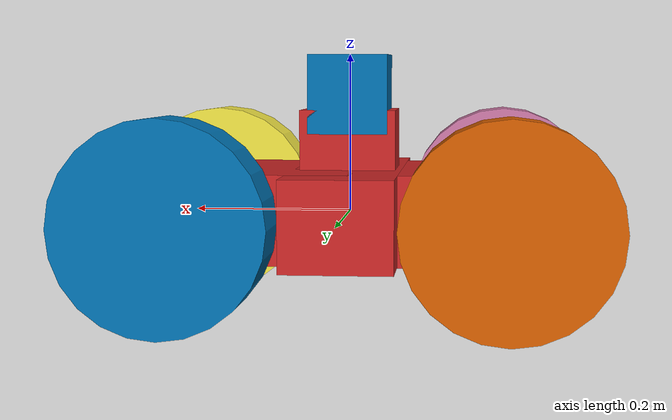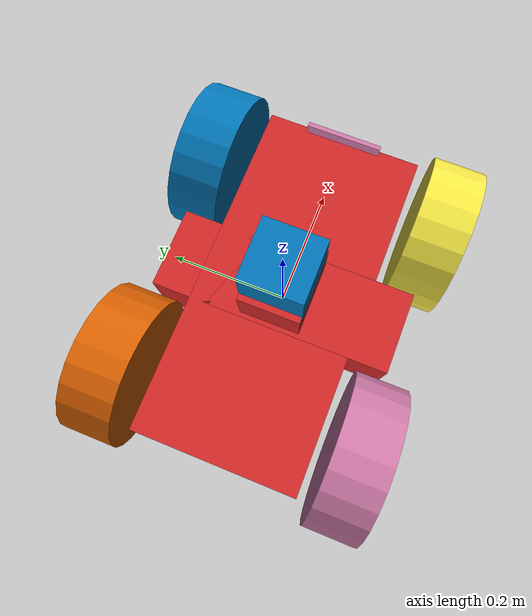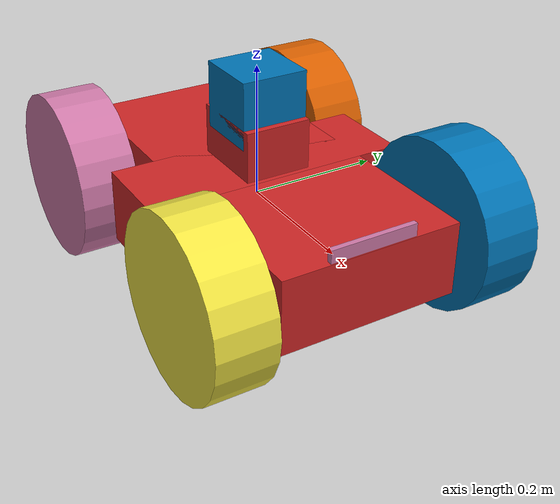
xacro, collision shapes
<?xml version='1.0'?>

<robot name="robot" xmlns:xacro="http://www.ros.org/wiki/xacro">
<xacro:include filename="$(find gazebo_simulation)/urdf/robot.gazebo" />
<xacro:include filename="$(find gazebo_simulation)/urdf/realsense-RS200.macro.xacro"/>
<xacro:include filename="$(find gazebo_simulation)/urdf/omni_wheel.urdf.xacro" />

  <gazebo reference="chassis">
    <material>Gazebo/RedBright</material>
  </gazebo>

  <gazebo reference="chassis2">
    <material>Gazebo/RedBright</material>
  </gazebo>

  <gazebo reference="robot_lidar_platform">
    <material>Gazebo/RedBright</material>
  </gazebo>

  <!-- ROBOT description -->
  <link name="robot_footprint"></link>

  <!--
    KUKA youBot dimentions
    https://www.expo21xx.com/industrial-robots/20317_st3_mobile-robot-research/default.htm
  -->

  <link name='chassis'>
    <pose>0 0 0.1 0 0 0</pose>

    <inertial>
      <mass value="15.0"/>
      <origin xyz="0.0 0 0" rpy=" 0 0 0"/>
      <inertia
          ixx="0.1" ixy="0" ixz="0"
          iyy="0.1" iyz="0"
          izz="0.1"
      />
    </inertial>

    <collision name='collision'>
      <origin xyz="0 0 0" rpy=" 0 0 0"/>
      <geometry>
        <box size=".580 .270 .110"/>
      </geometry>
    </collision>

    <visual name='chassis_visual'>
      <origin xyz="0 0 0" rpy=" 0 0 0"/>
      <geometry>
        <box size=".580 .270 .110"/>
      </geometry>
    </visual>
  </link>

  <joint name="robot_footprint_joint" type="fixed">
    <origin xyz="0 0 0" rpy="0 0 0" />
    <parent link="chassis" />
    <child link="robot_footprint"/>
  </joint>

  <link name='chassis2'>
    <inertial>
      <mass value="1.0"/>
      <origin xyz="0.0 0 0" rpy=" 0 0 0"/>
      <inertia
          ixx="0.1" ixy="0" ixz="0"
          iyy="0.1" iyz="0"
          izz="0.1"
      />
    </inertial>

    <collision name='collision2'>
      <origin xyz="0 0 0" rpy=" 0 0 0"/>
      <geometry>
        <box size=".135 .400 .110"/>
      </geometry>
    </collision>

    <visual name='chassis2_visual'>
      <origin xyz="0 0 0" rpy=" 0 0 0"/>
      <geometry>
        <box size=".135 .400 .110"/>
      </geometry>
    </visual>
  </link>

  <joint name="robot_footprint_joint2" type="fixed">
    <origin xyz="0 0 0" rpy="0 0 0" />
    <parent link="chassis"/>
    <child link="chassis2" />
  </joint>

  <joint name="robot_lidar_platform_joint" type="fixed">
    <origin xyz="0.0 0.0 0.08" rpy="0 0 0" />
    <parent link="chassis"/>
    <child link="robot_lidar_platform" />
  </joint>

  <link name='robot_lidar_platform'>
    <inertial>
      <mass value="1.0"/>
      <origin xyz="0.0 0 0" rpy=" 0 0 0"/>
      <inertia
          ixx="0.1" ixy="0" ixz="0"
          iyy="0.1" iyz="0"
          izz="0.1"
      />
    </inertial>

    <collision name='collision2'>
      <origin xyz="0 0 0" rpy=" 0 0 0"/>
      <geometry>
        <box size=".12 .10 .10"/>
      </geometry>
    </collision>

    <visual>
      <origin xyz="0.0 0 0" rpy=" 0 0 0"/>
      <geometry>
        <box size=".12 .10 .10"/>
      </geometry>
    </visual>
  </link>

  <!--
  Wheel:
    radius: 50mm
    length: 76mm
    mass: 500gr.
  -->

  <!-- LIDAR -->
  <link name="hokuyo">
    <inertial>
      <mass value="1e-5"/>
      <origin xyz="0 0 0" rpy=" 0 0 0"/>
      <inertia
          ixx="1e-6" ixy="0" ixz="0"
          iyy="1e-6" iyz="0"
          izz="1e-6"
      />
    </inertial>

    <collision name='hokuyo_collision'>
      <origin xyz="0 0 0" rpy=" 0 0 0"/>
      <geometry>
        <box size="0.1 0.1 0.1"/>
      </geometry>
    </collision>

    <visual name='hokuyo_visual'>
      <origin xyz="0 0 0" rpy=" 0 0 0"/>
      <geometry>
        <mesh filename="package://gazebo_simulation/meshes/hokuyo.dae"/>
      </geometry>
    </visual>
  </link>

  <joint type="fixed" name="hokuyo_joint">
    <origin xyz="0.0 0.0 0.15" rpy="0 0 0"/>
    <child link="hokuyo"/>
    <parent link="chassis"/>
    <axis xyz="0 1 0" rpy="0 0 0"/>
  </joint>

  <!-- IMU -->
  <link name="imu_link">
    <inertial>
      <mass value="0.001"/>
      <origin rpy="0 0 0" xyz="0 0 0"/>
      <inertia ixx="0.0001" ixy="0" ixz="0" iyy="0.000001" iyz="0" izz="0.0001"/>
    </inertial>
    <visual>
      <origin rpy="0 0 0" xyz="0 0 0"/>
      <geometry>
        <box size="0.001 0.001 0.001"/>
      </geometry>
    </visual>
  </link>

  <gazebo>
    <plugin name="imu_controller" filename="libhector_gazebo_ros_imu.so">
      <robotNamespace>/</robotNamespace>
      <updateRate>50.0</updateRate>
      <bodyName>chassis</bodyName>
      <topicName>imu/data</topicName>
      <accelDrift>0.005 0.005 0.005</accelDrift>
      <accelGaussianNoise>0.005 0.005 0.005</accelGaussianNoise>
      <rateDrift>0.005 0.005 0.005 </rateDrift>
      <rateGaussianNoise>0.005 0.005 0.005 </rateGaussianNoise>
      <headingDrift>0.005</headingDrift>
      <headingGaussianNoise>0.005</headingGaussianNoise>
    </plugin>
  </gazebo>

  <joint name="imu_joint" type="fixed">
    <axis xyz="1 0 0"/>
    <origin xyz="0 0 0.19"/>
    <parent link="chassis"/>
    <child link="imu_link"/>
  </joint>

  <!-- Create camera instance -->
  <xacro:realsense-rs200 prefix="" parent="chassis">
    <origin xyz="0.285 0 .065" rpy="0 0 0" />
  </xacro:realsense-rs200>

  <!-- x,y,z in translation from base_link to the center of the wheel -->
  <xacro:property name="wheel_offset_x" value="0.2" />
  <xacro:property name="wheel_offset_y" value="0.2" />
  <xacro:property name="wheel_offset_z" value="0.0" />

  <!-- Add omni wheels to the robot -->
  <xacro:omni_wheel prefix="front_right" parent="chassis" reflect="false">
    <origin xyz="${wheel_offset_x} -${wheel_offset_y} ${wheel_offset_z}" rpy="0 0 0"/>
  </xacro:omni_wheel>

  <xacro:omni_wheel prefix="front_left" parent="chassis" reflect="true">
    <origin xyz="${wheel_offset_x} ${wheel_offset_y} ${wheel_offset_z}" rpy="0 0 0"/>
  </xacro:omni_wheel>

  <xacro:omni_wheel prefix="back_left" parent="chassis" reflect="true">
    <origin xyz="-${wheel_offset_x} ${wheel_offset_y} ${wheel_offset_z}" rpy="0 0 0"/>
  </xacro:omni_wheel>

  <xacro:omni_wheel prefix="back_right" parent="chassis" reflect="false">
    <origin xyz="-${wheel_offset_x} -${wheel_offset_y} ${wheel_offset_z}" rpy="0 0 0"/>
  </xacro:omni_wheel>

</robot>

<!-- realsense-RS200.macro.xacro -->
<robot xmlns:xacro="http://ros.org/wiki/xacro">
<xacro:macro name="realsense-rs200" params="prefix parent *origin">

    <!-- Camera link -->
    <link name="${prefix}rs200_camera">
        <visual>
            <origin rpy="0 0 0" xyz="0 0 0"/>
            <geometry>
                <mesh filename="package://gazebo_simulation/meshes/realsense.dae"/>
            </geometry>
        </visual>
        <collision>
            <geometry>
                <box size="0.0078 0.130 0.0192"/>
            </geometry>
        </collision>
        <inertial>
            <mass value="0.0615752"/>
            <origin rpy="0 0 0" xyz="0 0 0"/>
            <inertia ixx="9.108e-05"
                     ixy="0"
                     ixz="0"
                     iyy="2.51e-06"
                     iyz="0"
                     izz="8.931e-05"
            />
        </inertial>
    </link>

    <!-- Connect camera to parent frame-->
    <joint name="${prefix}realsense_joint" type="fixed">
        <parent link="${parent}"/>
        <child link="${prefix}rs200_camera"/>
        <xacro:insert_block name="origin"/>
    </joint>

    <!-- Virtual links representing the cameras positons and orientations-->
    <link name="${prefix}color" />
    <link name="${prefix}depth" />
    <link name="${prefix}ired1" />
    <link name="${prefix}ired2" />

    <!-- Joints positioning the virtual links with respect to the camera main link-->
    <joint name="${prefix}color_joint" type="fixed">
        <parent link="${prefix}rs200_camera" />
        <child link="${prefix}color" />
        <!-- The default position is change since in Rviz the cloud depth axis is Z not X-->
        <origin xyz="0 -0.046 0.004" rpy="${pi/2} ${pi} ${pi/2}"/>
    </joint>

    <joint name="${prefix}depth_joint" type="fixed">
        <parent link="${prefix}rs200_camera" />
        <child link="${prefix}depth" />
        <origin xyz="0 -0.03 0.004" rpy="0 0 0"/>
    </joint>

    <joint name="${prefix}ired1_joint" type="fixed">
        <parent link="${prefix}rs200_camera" />
        <child link="${prefix}ired1" />
        <origin xyz="0 -0.06 0.004" rpy="0 0 0"/>
    </joint>

    <joint name="${prefix}ired2_joint" type="fixed">
        <parent link="${prefix}rs200_camera" />
        <child link="${prefix}ired2" />
        <origin xyz="0 0.01 0.004" rpy="0 0 0"/>
    </joint>

<!-- GAZEBO DEFINITIONS ***************************************-->

    <!-- Load plugin to the model ("robot" in urdf format)-->
    <gazebo>
        <plugin name="${prefix}r200" filename="librealsense_gazebo_plugin.so">
            <prefix>${prefix}</prefix>
        </plugin>
    </gazebo>

    <!-- Load parameters to model's main link-->
    <gazebo reference="${prefix}rs200_camera">
        <self_collide>0</self_collide>
        <enable_wind>0</enable_wind>
        <kinematic>0</kinematic>
        <gravity>1</gravity>
        <mu2>1</mu2>
        <fdir1>0 0 0</fdir1>
        <kp>1e+13</kp>
        <kd>1</kd>

        <sensor name="${prefix}color" type="camera">
            <pose frame="">0 -0.046 0.004 0 0 0</pose>
            <camera name="${prefix}rs200_camera">
            <horizontal_fov>1.047</horizontal_fov>
            <image>
                <width>640</width>
                <height>480</height>
                <format>RGB_INT8</format>
            </image>
            <clip>
                <near>0.1</near>
                <far>100</far>
            </clip>
            <noise>
                <type>gaussian</type>
                <mean>0.0</mean>
                <stddev>0.007</stddev>
            </noise>
            </camera>
            <always_on>1</always_on>
            <update_rate>60</update_rate>
            <visualize>1</visualize>
        </sensor>
        <sensor name="${prefix}ired1" type="camera">
            <pose frame="">0 -0.06 0.004 0 0 0</pose>
            <camera name="${prefix}rs200_camera">
            <horizontal_fov>1.047</horizontal_fov>
            <image>
                <width>640</width>
                <height>480</height>
                <format>L_INT8</format>
            </image>
            <clip>
                <near>0.1</near>
                <far>100</far>
            </clip>
            <noise>
                <type>gaussian</type>
                <mean>0.0</mean>
                <stddev>0.05</stddev>
            </noise>
            </camera>
            <always_on>1</always_on>
            <update_rate>60</update_rate>
            <visualize>0</visualize>
        </sensor>
        <sensor name="${prefix}ired2" type="camera">
            <pose frame="">0 0.01 0.004 0 0 0</pose>
            <camera name="${prefix}rs200_camera">
            <horizontal_fov>1.047</horizontal_fov>
            <image>
                <width>640</width>
                <height>480</height>
                <format>L_INT8</format>
            </image>
            <clip>
                <near>0.1</near>
                <far>100</far>
            </clip>
            <noise>
                <type>gaussian</type>
                <mean>0.0</mean>
                <stddev>0.05</stddev>
            </noise>
            </camera>
            <always_on>1</always_on>
            <update_rate>60</update_rate>
            <visualize>0</visualize>
        </sensor>
        <sensor name="${prefix}depth" type="depth">
            <pose frame="">0 -0.03 0.004 0 0 0</pose>
            <camera name="${prefix}rs200_camera">
            <horizontal_fov>1.047</horizontal_fov>
            <image>
                    <width>640</width>
                    <height>480</height>
            </image>
            <clip>
                    <near>0.1</near>
                    <far>100</far>
            </clip>
            <noise>
                    <type>gaussian</type>
                    <mean>0.0</mean>
                    <stddev>0.100</stddev>
            </noise>
            </camera>
            <always_on>1</always_on>
            <update_rate>60</update_rate>
            <visualize>0</visualize>
        </sensor>
    </gazebo>

</xacro:macro>
</robot>

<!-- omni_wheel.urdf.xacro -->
<robot name="wheel" xmlns:xacro="http://www.ros.org/wiki/xacro">

  <!-- Constants -->
  <xacro:property name="PI" value="3.1415926535897931" />
  <xacro:property name="wheel_radius" value="0.127" />
  <xacro:property name="wheel_height" value="0.087" />
  <xacro:property name="wheel_mass" value="0.5" /> <!-- in kg-->

  <!-- Simple Macro to calculate inertia -->
  <xacro:macro name="cylinder_inertia" params="m r h">
    <inertia  ixx="${m*(3*r*r+h*h)/12}" ixy = "0" ixz = "0"
              iyy="${m*r*r/2}" iyz = "0"
              izz="${m*(3*r*r+h*h)/12}" />
  </xacro:macro>

  <!-- Set up of the Wheel -->
  <xacro:macro name="omni_wheel" params="prefix parent *origin reflect">

    <link name="${prefix}_wheel_link">
      <visual>
        <origin xyz="0 0 0" rpy="0 0 0" />
        <xacro:if value="${reflect}">
          <geometry>
            <mesh filename="package://gazebo_simulation/meshes/omni_wheel_1.dae" />
          </geometry>
          </xacro:if>
          <xacro:unless value="${reflect}">
            <geometry>
              <mesh filename="package://gazebo_simulation/meshes/omni_wheel_2.dae" />
            </geometry>
		    </xacro:unless>
      </visual>

      <collision>
				<origin xyz="0 0 0" rpy="${PI/2} 0 0" />
        <geometry>
					<cylinder length="${wheel_height}" radius="${wheel_radius}" />
        </geometry>
      </collision>

      <inertial>
        <mass value="${wheel_mass}" />
        <origin xyz="0 0 0" />
        <cylinder_inertia  m="${wheel_mass}" r="${wheel_radius}" h="${wheel_height}" />
      </inertial>
    </link>

    <joint name="${prefix}_wheel_joint" type="continuous">
      <parent link="${parent}"/>
      <child link="${prefix}_wheel_link"/>
      <xacro:insert_block name="origin" />
      <axis xyz="0 1 0" rpy="0 0 0" />
      <limit effort="100" velocity="100"/>
      <joint_properties damping="0.0" friction="0.0"/>
    </joint>

    <!-- Transmission is important to link the joints and the controller (see summit_xl_control/config/summit_xl_control.yaml)-->
    <transmission name="${prefix}_wheel_joint_trans">
      <type>transmission_interface/SimpleTransmission</type>
      <joint name="${prefix}_wheel_joint" >
        <hardwareInterface>hardware_interface/VelocityJointInterface</hardwareInterface>
      </joint>
      <actuator name="${prefix}_wheel_joint_motor">
         <mechanicalReduction>1</mechanicalReduction>
      </actuator>
    </transmission>

    <gazebo reference="${prefix}_wheel_link">
		<mu1 value="1.0"/>
		<mu2 value="1.0"/>
		<kp value="10000000.0" />
		<kd value="1.0" />
		<fdir1 value="1 0 0"/>
        <turnGravityOff>false</turnGravityOff>
    </gazebo>

  </xacro:macro>
</robot>
